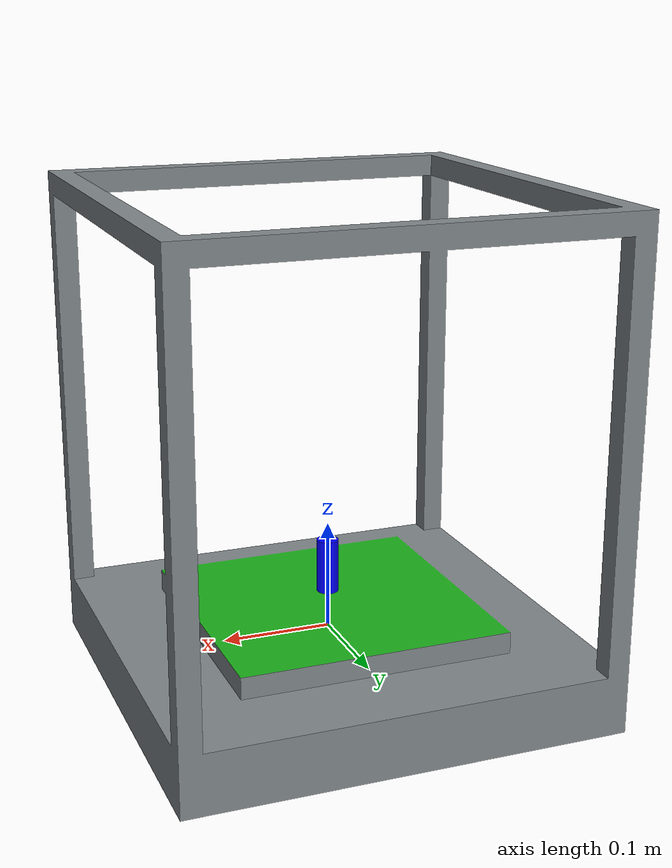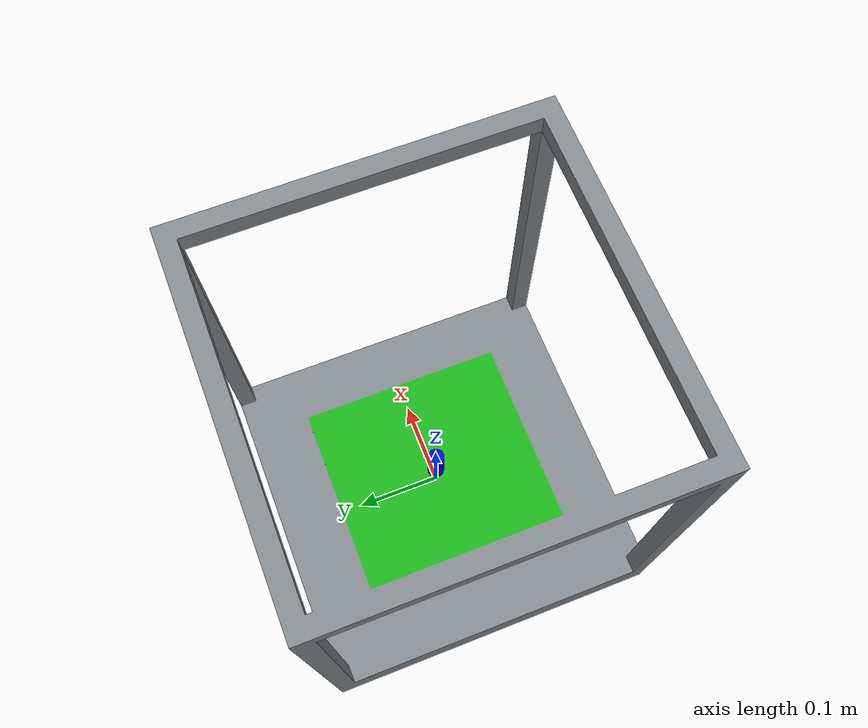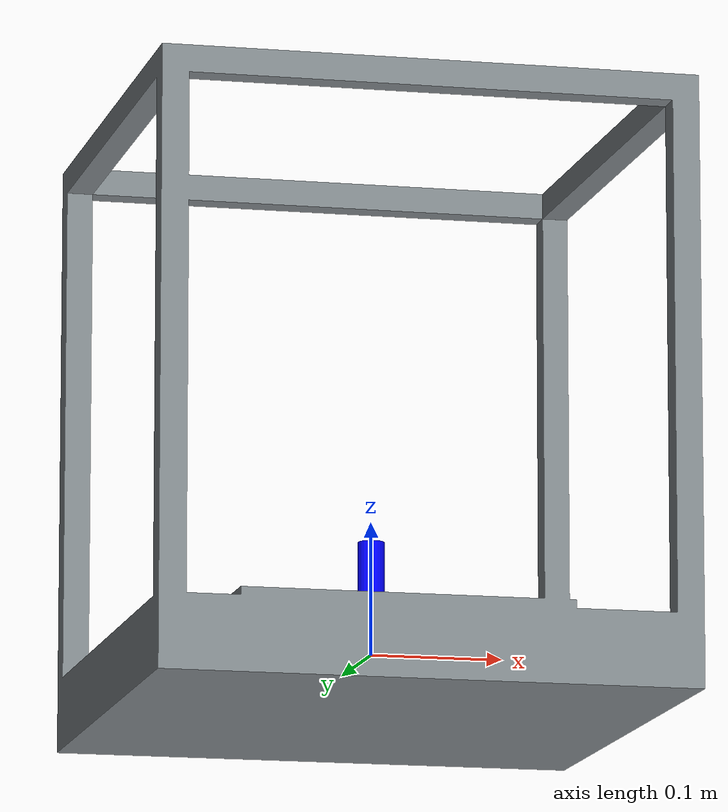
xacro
<?xml version="1.0"?>
<robot name="printer" xmlns:xacro="http://www.ros.org/wiki/xacro">
<xacro:property name="plate_height" value="0.25" />
<xacro:property name="plate_lenght" value="0.025" />
<xacro:property name="extruder_radius" value="0.01" />
<xacro:property name="extruder_length" value="0.05" />
<xacro:property name="lower_limit" value="0.35" />

  <link name="base_link">
    <visual>
        <geometry>
            <mesh filename="package://move_printer/urdf/printer.dae"/>
        </geometry>
        <origin rpy="${-pi/2} 0 0" xyz="0 0 0"/>
    </visual>
  </link>

  <link name='extruder_sublink1'/>
  <link name='extruder_sublink2'/>

  <link name="extruder_link">
    <visual>
      <geometry>
        <cylinder length="${extruder_length}" radius="${extruder_radius}"/>
      </geometry>
      <origin rpy="0 0 0" xyz="0 0 ${extruder_length/2}"/>
      <material name = "blue">
        <color rgba="0 0 1.0 0"/>
      </material>
    </visual>
  </link>

  <joint name="base_link_to_extruder_sublink1" type="prismatic">
    <parent link="base_link"/>
    <child link="extruder_sublink1"/>
    <origin rpy="0 0 0" xyz="0 0 0"/>
    <axis xyz="1.0 0 0" />
    <limit effort="1000" velocity="0.1" lower="${-plate_height/2}" upper="${plate_height/2}"/>
  </joint>

  <joint name="base_link_to_extruder_sublink2" type="prismatic">
    <parent link="extruder_sublink1"/>
    <child link="extruder_sublink2"/>
     <origin rpy="0 0 0" xyz="0 0 0"/>
    <axis xyz="0 1.0 0" />
    <limit effort="1000" velocity="0.1" lower="${-plate_height/2}" upper="${plate_height/2}"/>
  </joint>

  <joint name="base_link_to_extruder_link" type="prismatic">
    <parent link="extruder_sublink2"/>
    <child link="extruder_link"/>
    <origin rpy="0 0 0" xyz="0 0 0.035"/>
    <axis xyz="0 0 1.0" />
    <limit effort="1000" velocity="0.1" lower="0.0" upper="${lower_limit}"/>
  </joint>

</robot>
